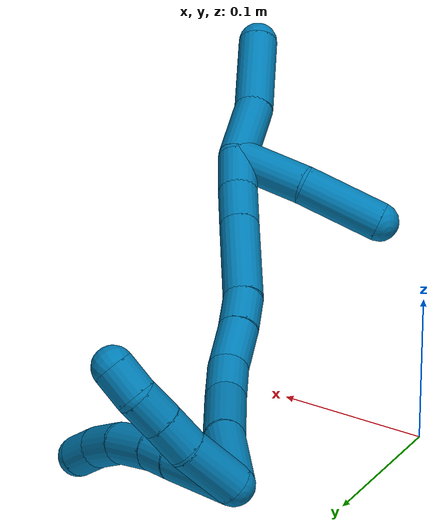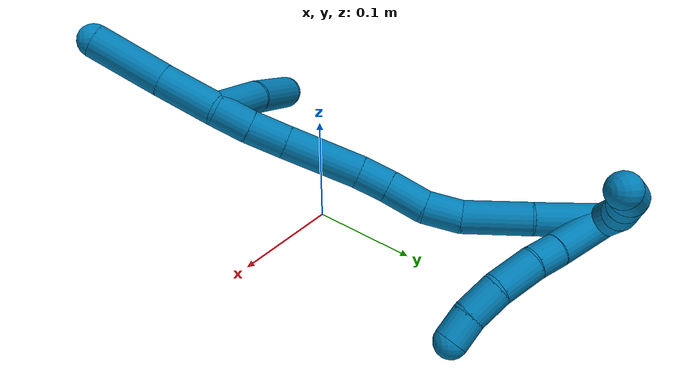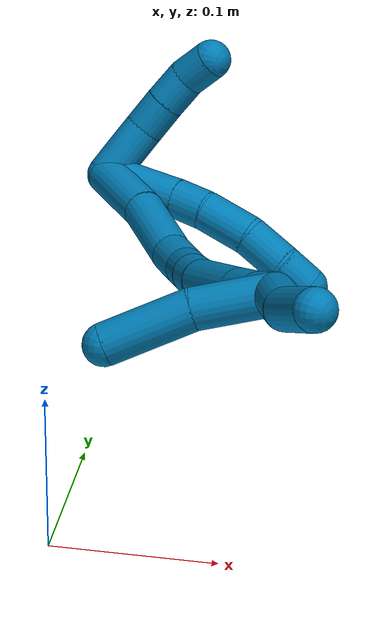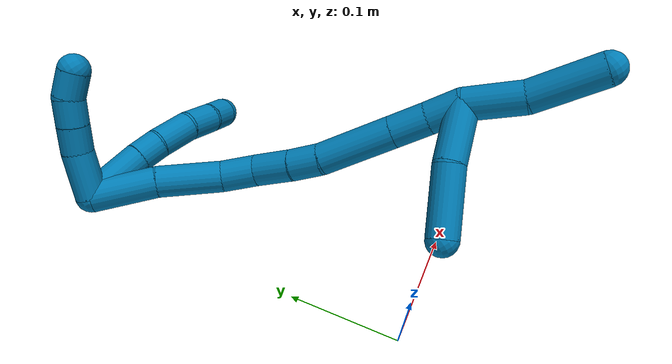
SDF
<sdf version="1.7">
 <world name="default">
  <model name="9">
   <static>0</static>
   <link name="9">
    <collision name="collision-cylinder-e_1_2_8">
     <pose>-0.007497 0.005002 -0.022842 -2.92601 -0.31027 1.93102</pose>
     <geometry><cylinder><radius>0.0125</radius><length>0.049112</length></cylinder></geometry>
     <surface>
      <friction><ode><mu>1.16</mu><mu2>1.16</mu2><slip1>0</slip1><slip2>0</slip2></ode></friction>
      <contact><ode><kp>1e+06</kp><kd>1</kd><max_vel>0</max_vel><min_depth>0.001</min_depth></ode></contact>
     </surface>
    </collision>
    <visual name="visual-cylinder-e_1_2_8">
     <pose>-0.007497 0.005002 -0.022842 -2.92601 -0.31027 1.93102</pose>
     <geometry><cylinder><radius>0.0125</radius><length>0.049112</length></cylinder></geometry>
     <material><ambient>0 0.490196 0.709804 1</ambient></material>
    </visual>
    <collision name="collision-cylinder-e_2_8_9">
     <pose>-0.018314 0.011351 -0.055439 -3.00434 -0.325169 2.34801</pose>
     <geometry><cylinder><radius>0.0125</radius><length>0.020783</length></cylinder></geometry>
     <surface>
      <friction><ode><mu>1.16</mu><mu2>1.16</mu2><slip1>0</slip1><slip2>0</slip2></ode></friction>
      <contact><ode><kp>1e+06</kp><kd>1</kd><max_vel>0</max_vel><min_depth>0.001</min_depth></ode></contact>
     </surface>
    </collision>
    <visual name="visual-cylinder-e_2_8_9">
     <pose>-0.018314 0.011351 -0.055439 -3.00434 -0.325169 2.34801</pose>
     <geometry><cylinder><radius>0.0125</radius><length>0.020783</length></cylinder></geometry>
     <material><ambient>0 0.490196 0.709804 1</ambient></material>
    </visual>
    <collision name="collision-cylinder-e_3_9_10">
     <pose>-0.029017 0.014257 -0.079372 -3.03211 -0.477627 2.69884</pose>
     <geometry><cylinder><radius>0.0125</radius><length>0.032124</length></cylinder></geometry>
     <surface>
      <friction><ode><mu>1.16</mu><mu2>1.16</mu2><slip1>0</slip1><slip2>0</slip2></ode></friction>
      <contact><ode><kp>1e+06</kp><kd>1</kd><max_vel>0</max_vel><min_depth>0.001</min_depth></ode></contact>
     </surface>
    </collision>
    <visual name="visual-cylinder-e_3_9_10">
     <pose>-0.029017 0.014257 -0.079372 -3.03211 -0.477627 2.69884</pose>
     <geometry><cylinder><radius>0.0125</radius><length>0.032124</length></cylinder></geometry>
     <material><ambient>0 0.490196 0.709804 1</ambient></material>
    </visual>
    <collision name="collision-cylinder-e_4_10_11">
     <pose>-0.045011 0.01622 -0.103786 -3.10211 -0.699026 3.03336</pose>
     <geometry><cylinder><radius>0.0125</radius><length>0.026763</length></cylinder></geometry>
     <surface>
      <friction><ode><mu>1.16</mu><mu2>1.16</mu2><slip1>0</slip1><slip2>0</slip2></ode></friction>
      <contact><ode><kp>1e+06</kp><kd>1</kd><max_vel>0</max_vel><min_depth>0.001</min_depth></ode></contact>
     </surface>
    </collision>
    <visual name="visual-cylinder-e_4_10_11">
     <pose>-0.045011 0.01622 -0.103786 -3.10211 -0.699026 3.03336</pose>
     <geometry><cylinder><radius>0.0125</radius><length>0.026763</length></cylinder></geometry>
     <material><ambient>0 0.490196 0.709804 1</ambient></material>
    </visual>
    <collision name="collision-cylinder-e_5_11_6">
     <pose>-0.061665 0.017847 -0.120831 -2.96401 -0.860406 2.75834</pose>
     <geometry><cylinder><radius>0.0125</radius><length>0.021219</length></cylinder></geometry>
     <surface>
      <friction><ode><mu>1.16</mu><mu2>1.16</mu2><slip1>0</slip1><slip2>0</slip2></ode></friction>
      <contact><ode><kp>1e+06</kp><kd>1</kd><max_vel>0</max_vel><min_depth>0.001</min_depth></ode></contact>
     </surface>
    </collision>
    <visual name="visual-cylinder-e_5_11_6">
     <pose>-0.061665 0.017847 -0.120831 -2.96401 -0.860406 2.75834</pose>
     <geometry><cylinder><radius>0.0125</radius><length>0.021219</length></cylinder></geometry>
     <material><ambient>0 0.490196 0.709804 1</ambient></material>
    </visual>
    <collision name="collision-cylinder-e_1_2_12">
     <pose>0.008788 0.014995 -0.006227 -1.96436 0.496093 -0.725228</pose>
     <geometry><cylinder><radius>0.0125</radius><length>0.036925</length></cylinder></geometry>
     <surface>
      <friction><ode><mu>1.16</mu><mu2>1.16</mu2><slip1>0</slip1><slip2>0</slip2></ode></friction>
      <contact><ode><kp>1e+06</kp><kd>1</kd><max_vel>0</max_vel><min_depth>0.001</min_depth></ode></contact>
     </surface>
    </collision>
    <visual name="visual-cylinder-e_1_2_12">
     <pose>0.008788 0.014995 -0.006227 -1.96436 0.496093 -0.725228</pose>
     <geometry><cylinder><radius>0.0125</radius><length>0.036925</length></cylinder></geometry>
     <material><ambient>0 0.490196 0.709804 1</ambient></material>
    </visual>
    <collision name="collision-cylinder-e_2_12_13">
     <pose>0.023451 0.037462 -0.017281 -2.1445 0.583677 -1.00846</pose>
     <geometry><cylinder><radius>0.0125</radius><length>0.021321</length></cylinder></geometry>
     <surface>
      <friction><ode><mu>1.16</mu><mu2>1.16</mu2><slip1>0</slip1><slip2>0</slip2></ode></friction>
      <contact><ode><kp>1e+06</kp><kd>1</kd><max_vel>0</max_vel><min_depth>0.001</min_depth></ode></contact>
     </surface>
    </collision>
    <visual name="visual-cylinder-e_2_12_13">
     <pose>0.023451 0.037462 -0.017281 -2.1445 0.583677 -1.00846</pose>
     <geometry><cylinder><radius>0.0125</radius><length>0.021321</length></cylinder></geometry>
     <material><ambient>0 0.490196 0.709804 1</ambient></material>
    </visual>
    <collision name="collision-cylinder-e_3_13_14">
     <pose>0.034776 0.052401 -0.026977 -2.1485 0.548738 -0.958215</pose>
     <geometry><cylinder><radius>0.0125</radius><length>0.020898</length></cylinder></geometry>
     <surface>
      <friction><ode><mu>1.16</mu><mu2>1.16</mu2><slip1>0</slip1><slip2>0</slip2></ode></friction>
      <contact><ode><kp>1e+06</kp><kd>1</kd><max_vel>0</max_vel><min_depth>0.001</min_depth></ode></contact>
     </surface>
    </collision>
    <visual name="visual-cylinder-e_3_13_14">
     <pose>0.034776 0.052401 -0.026977 -2.1485 0.548738 -0.958215</pose>
     <geometry><cylinder><radius>0.0125</radius><length>0.020898</length></cylinder></geometry>
     <material><ambient>0 0.490196 0.709804 1</ambient></material>
    </visual>
    <collision name="collision-cylinder-e_4_14_5">
     <pose>0.045036 0.065184 -0.039421 -2.52983 0.479375 -1.31723</pose>
     <geometry><cylinder><radius>0.0125</radius><length>0.020857</length></cylinder></geometry>
     <surface>
      <friction><ode><mu>1.16</mu><mu2>1.16</mu2><slip1>0</slip1><slip2>0</slip2></ode></friction>
      <contact><ode><kp>1e+06</kp><kd>1</kd><max_vel>0</max_vel><min_depth>0.001</min_depth></ode></contact>
     </surface>
    </collision>
    <visual name="visual-cylinder-e_4_14_5">
     <pose>0.045036 0.065184 -0.039421 -2.52983 0.479375 -1.31723</pose>
     <geometry><cylinder><radius>0.0125</radius><length>0.020857</length></cylinder></geometry>
     <material><ambient>0 0.490196 0.709804 1</ambient></material>
    </visual>
    <collision name="collision-cylinder-e_1_2_15">
     <pose>-0.001061 -0.009669 -0.023704 2.75429 -0.041419 -0.21045</pose>
     <geometry><cylinder><radius>0.0125</radius><length>0.051245</length></cylinder></geometry>
     <surface>
      <friction><ode><mu>1.16</mu><mu2>1.16</mu2><slip1>0</slip1><slip2>0</slip2></ode></friction>
      <contact><ode><kp>1e+06</kp><kd>1</kd><max_vel>0</max_vel><min_depth>0.001</min_depth></ode></contact>
     </surface>
    </collision>
    <visual name="visual-cylinder-e_1_2_15">
     <pose>-0.001061 -0.009669 -0.023704 2.75429 -0.041419 -0.21045</pose>
     <geometry><cylinder><radius>0.0125</radius><length>0.051245</length></cylinder></geometry>
     <material><ambient>0 0.490196 0.709804 1</ambient></material>
    </visual>
    <collision name="collision-cylinder-e_2_15_16">
     <pose>-0.004108 -0.032196 -0.069731 2.61901 -0.076956 -0.285968</pose>
     <geometry><cylinder><radius>0.0125</radius><length>0.051675</length></cylinder></geometry>
     <surface>
      <friction><ode><mu>1.16</mu><mu2>1.16</mu2><slip1>0</slip1><slip2>0</slip2></ode></friction>
      <contact><ode><kp>1e+06</kp><kd>1</kd><max_vel>0</max_vel><min_depth>0.001</min_depth></ode></contact>
     </surface>
    </collision>
    <visual name="visual-cylinder-e_2_15_16">
     <pose>-0.004108 -0.032196 -0.069731 2.61901 -0.076956 -0.285968</pose>
     <geometry><cylinder><radius>0.0125</radius><length>0.051675</length></cylinder></geometry>
     <material><ambient>0 0.490196 0.709804 1</ambient></material>
    </visual>
    <collision name="collision-cylinder-e_3_16_17">
     <pose>-0.00351 -0.051577 -0.104374 2.65464 0.183291 0.708717</pose>
     <geometry><cylinder><radius>0.0125</radius><length>0.028356</length></cylinder></geometry>
     <surface>
      <friction><ode><mu>1.16</mu><mu2>1.16</mu2><slip1>0</slip1><slip2>0</slip2></ode></friction>
      <contact><ode><kp>1e+06</kp><kd>1</kd><max_vel>0</max_vel><min_depth>0.001</min_depth></ode></contact>
     </surface>
    </collision>
    <visual name="visual-cylinder-e_3_16_17">
     <pose>-0.00351 -0.051577 -0.104374 2.65464 0.183291 0.708717</pose>
     <geometry><cylinder><radius>0.0125</radius><length>0.028356</length></cylinder></geometry>
     <material><ambient>0 0.490196 0.709804 1</ambient></material>
    </visual>
    <collision name="collision-cylinder-e_4_17_18">
     <pose>0.00537 -0.065818 -0.128354 2.55688 0.423101 1.23952</pose>
     <geometry><cylinder><radius>0.0125</radius><length>0.030669</length></cylinder></geometry>
     <surface>
      <friction><ode><mu>1.16</mu><mu2>1.16</mu2><slip1>0</slip1><slip2>0</slip2></ode></friction>
      <contact><ode><kp>1e+06</kp><kd>1</kd><max_vel>0</max_vel><min_depth>0.001</min_depth></ode></contact>
     </surface>
    </collision>
    <visual name="visual-cylinder-e_4_17_18">
     <pose>0.00537 -0.065818 -0.128354 2.55688 0.423101 1.23952</pose>
     <geometry><cylinder><radius>0.0125</radius><length>0.030669</length></cylinder></geometry>
     <material><ambient>0 0.490196 0.709804 1</ambient></material>
    </visual>
    <collision name="collision-cylinder-e_5_18_19">
     <pose>0.016227 -0.079035 -0.149877 2.63298 0.383856 1.28389</pose>
     <geometry><cylinder><radius>0.0125</radius><length>0.024358</length></cylinder></geometry>
     <surface>
      <friction><ode><mu>1.16</mu><mu2>1.16</mu2><slip1>0</slip1><slip2>0</slip2></ode></friction>
      <contact><ode><kp>1e+06</kp><kd>1</kd><max_vel>0</max_vel><min_depth>0.001</min_depth></ode></contact>
     </surface>
    </collision>
    <visual name="visual-cylinder-e_5_18_19">
     <pose>0.016227 -0.079035 -0.149877 2.63298 0.383856 1.28389</pose>
     <geometry><cylinder><radius>0.0125</radius><length>0.024358</length></cylinder></geometry>
     <material><ambient>0 0.490196 0.709804 1</ambient></material>
    </visual>
    <collision name="collision-cylinder-e_6_19_20">
     <pose>0.031024 -0.093509 -0.185592 2.80746 0.357941 1.64095</pose>
     <geometry><cylinder><radius>0.0125</radius><length>0.058435</length></cylinder></geometry>
     <surface>
      <friction><ode><mu>1.16</mu><mu2>1.16</mu2><slip1>0</slip1><slip2>0</slip2></ode></friction>
      <contact><ode><kp>1e+06</kp><kd>1</kd><max_vel>0</max_vel><min_depth>0.001</min_depth></ode></contact>
     </surface>
    </collision>
    <visual name="visual-cylinder-e_6_19_20">
     <pose>0.031024 -0.093509 -0.185592 2.80746 0.357941 1.64095</pose>
     <geometry><cylinder><radius>0.0125</radius><length>0.058435</length></cylinder></geometry>
     <material><ambient>0 0.490196 0.709804 1</ambient></material>
    </visual>
    <collision name="collision-cylinder-e_7_20_21">
     <pose>0.0464 -0.10685 -0.223931 2.80519 0.370584 1.66946</pose>
     <geometry><cylinder><radius>0.0125</radius><length>0.028383</length></cylinder></geometry>
     <surface>
      <friction><ode><mu>1.16</mu><mu2>1.16</mu2><slip1>0</slip1><slip2>0</slip2></ode></friction>
      <contact><ode><kp>1e+06</kp><kd>1</kd><max_vel>0</max_vel><min_depth>0.001</min_depth></ode></contact>
     </surface>
    </collision>
    <visual name="visual-cylinder-e_7_20_21">
     <pose>0.0464 -0.10685 -0.223931 2.80519 0.370584 1.66946</pose>
     <geometry><cylinder><radius>0.0125</radius><length>0.028383</length></cylinder></geometry>
     <material><ambient>0 0.490196 0.709804 1</ambient></material>
    </visual>
    <collision name="collision-cylinder-e_8_21_1">
     <pose>0.057417 -0.115237 -0.247816 2.80252 0.452633 1.86305</pose>
     <geometry><cylinder><radius>0.0125</radius><length>0.026879</length></cylinder></geometry>
     <surface>
      <friction><ode><mu>1.16</mu><mu2>1.16</mu2><slip1>0</slip1><slip2>0</slip2></ode></friction>
      <contact><ode><kp>1e+06</kp><kd>1</kd><max_vel>0</max_vel><min_depth>0.001</min_depth></ode></contact>
     </surface>
    </collision>
    <visual name="visual-cylinder-e_8_21_1">
     <pose>0.057417 -0.115237 -0.247816 2.80252 0.452633 1.86305</pose>
     <geometry><cylinder><radius>0.0125</radius><length>0.026879</length></cylinder></geometry>
     <material><ambient>0 0.490196 0.709804 1</ambient></material>
    </visual>
    <collision name="collision-cylinder-e_1_1_22">
     <pose>0.064131 -0.13399 -0.241212 0.685875 0.035936 0.012832</pose>
     <geometry><cylinder><radius>0.0125</radius><length>0.046554</length></cylinder></geometry>
     <surface>
      <friction><ode><mu>1.16</mu><mu2>1.16</mu2><slip1>0</slip1><slip2>0</slip2></ode></friction>
      <contact><ode><kp>1e+06</kp><kd>1</kd><max_vel>0</max_vel><min_depth>0.001</min_depth></ode></contact>
     </surface>
    </collision>
    <visual name="visual-cylinder-e_1_1_22">
     <pose>0.064131 -0.13399 -0.241212 0.685875 0.035936 0.012832</pose>
     <geometry><cylinder><radius>0.0125</radius><length>0.046554</length></cylinder></geometry>
     <material><ambient>0 0.490196 0.709804 1</ambient></material>
    </visual>
    <collision name="collision-cylinder-e_2_22_4">
     <pose>0.062316 -0.168417 -0.205343 0.834003 -0.099375 -0.04405</pose>
     <geometry><cylinder><radius>0.0125</radius><length>0.053446</length></cylinder></geometry>
     <surface>
      <friction><ode><mu>1.16</mu><mu2>1.16</mu2><slip1>0</slip1><slip2>0</slip2></ode></friction>
      <contact><ode><kp>1e+06</kp><kd>1</kd><max_vel>0</max_vel><min_depth>0.001</min_depth></ode></contact>
     </surface>
    </collision>
    <visual name="visual-cylinder-e_2_22_4">
     <pose>0.062316 -0.168417 -0.205343 0.834003 -0.099375 -0.04405</pose>
     <geometry><cylinder><radius>0.0125</radius><length>0.053446</length></cylinder></geometry>
     <material><ambient>0 0.490196 0.709804 1</ambient></material>
    </visual>
    <collision name="collision-cylinder-e_1_1_23">
     <pose>0.071739 -0.131508 -0.275985 2.51069 0.386151 1.07949</pose>
     <geometry><cylinder><radius>0.0125</radius><length>0.044843</length></cylinder></geometry>
     <surface>
      <friction><ode><mu>1.16</mu><mu2>1.16</mu2><slip1>0</slip1><slip2>0</slip2></ode></friction>
      <contact><ode><kp>1e+06</kp><kd>1</kd><max_vel>0</max_vel><min_depth>0.001</min_depth></ode></contact>
     </surface>
    </collision>
    <visual name="visual-cylinder-e_1_1_23">
     <pose>0.071739 -0.131508 -0.275985 2.51069 0.386151 1.07949</pose>
     <geometry><cylinder><radius>0.0125</radius><length>0.044843</length></cylinder></geometry>
     <material><ambient>0 0.490196 0.709804 1</ambient></material>
    </visual>
    <collision name="collision-cylinder-e_2_23_3">
     <pose>0.093128 -0.153142 -0.31523 2.74611 0.488578 1.7875</pose>
     <geometry><cylinder><radius>0.0125</radius><length>0.055157</length></cylinder></geometry>
     <surface>
      <friction><ode><mu>1.16</mu><mu2>1.16</mu2><slip1>0</slip1><slip2>0</slip2></ode></friction>
      <contact><ode><kp>1e+06</kp><kd>1</kd><max_vel>0</max_vel><min_depth>0.001</min_depth></ode></contact>
     </surface>
    </collision>
    <visual name="visual-cylinder-e_2_23_3">
     <pose>0.093128 -0.153142 -0.31523 2.74611 0.488578 1.7875</pose>
     <geometry><cylinder><radius>0.0125</radius><length>0.055157</length></cylinder></geometry>
     <material><ambient>0 0.490196 0.709804 1</ambient></material>
    </visual>
    <collision name="collision-sphere-3">
     <pose>0.106073 -0.162524 -0.337702 0 -0 0</pose>
     <geometry><sphere><radius>0.0125</radius></sphere></geometry>
     <surface>
      <friction><ode><mu>1.16</mu><mu2>1.16</mu2><slip1>0</slip1><slip2>0</slip2></ode></friction>
      <contact><ode><kp>1e+06</kp><kd>1</kd><max_vel>0</max_vel><min_depth>0.001</min_depth></ode></contact>
     </surface>
    </collision>
    <visual name="visual-sphere-3">
     <pose>0.106073 -0.162524 -0.337702 0 -0 0</pose>
     <geometry><sphere><radius>0.0125</radius></sphere></geometry>
     <material><ambient>0 0.490196 0.709804 1</ambient></material>
    </visual>
    <collision name="collision-sphere-23">
     <pose>0.080184 -0.14376 -0.292757 0 -0 0</pose>
     <geometry><sphere><radius>0.0125</radius></sphere></geometry>
     <surface>
      <friction><ode><mu>1.16</mu><mu2>1.16</mu2><slip1>0</slip1><slip2>0</slip2></ode></friction>
      <contact><ode><kp>1e+06</kp><kd>1</kd><max_vel>0</max_vel><min_depth>0.001</min_depth></ode></contact>
     </surface>
    </collision>
    <visual name="visual-sphere-23">
     <pose>0.080184 -0.14376 -0.292757 0 -0 0</pose>
     <geometry><sphere><radius>0.0125</radius></sphere></geometry>
     <material><ambient>0 0.490196 0.709804 1</ambient></material>
    </visual>
    <collision name="collision-sphere-4">
     <pose>0.059665 -0.188111 -0.187476 0 -0 0</pose>
     <geometry><sphere><radius>0.0125</radius></sphere></geometry>
     <surface>
      <friction><ode><mu>1.16</mu><mu2>1.16</mu2><slip1>0</slip1><slip2>0</slip2></ode></friction>
      <contact><ode><kp>1e+06</kp><kd>1</kd><max_vel>0</max_vel><min_depth>0.001</min_depth></ode></contact>
     </surface>
    </collision>
    <visual name="visual-sphere-4">
     <pose>0.059665 -0.188111 -0.187476 0 -0 0</pose>
     <geometry><sphere><radius>0.0125</radius></sphere></geometry>
     <material><ambient>0 0.490196 0.709804 1</ambient></material>
    </visual>
    <collision name="collision-sphere-22">
     <pose>0.064967 -0.148722 -0.22321 0 -0 0</pose>
     <geometry><sphere><radius>0.0125</radius></sphere></geometry>
     <surface>
      <friction><ode><mu>1.16</mu><mu2>1.16</mu2><slip1>0</slip1><slip2>0</slip2></ode></friction>
      <contact><ode><kp>1e+06</kp><kd>1</kd><max_vel>0</max_vel><min_depth>0.001</min_depth></ode></contact>
     </surface>
    </collision>
    <visual name="visual-sphere-22">
     <pose>0.064967 -0.148722 -0.22321 0 -0 0</pose>
     <geometry><sphere><radius>0.0125</radius></sphere></geometry>
     <material><ambient>0 0.490196 0.709804 1</ambient></material>
    </visual>
    <collision name="collision-sphere-1">
     <pose>0.063295 -0.119257 -0.259214 0 -0 0</pose>
     <geometry><sphere><radius>0.0125</radius></sphere></geometry>
     <surface>
      <friction><ode><mu>1.16</mu><mu2>1.16</mu2><slip1>0</slip1><slip2>0</slip2></ode></friction>
      <contact><ode><kp>1e+06</kp><kd>1</kd><max_vel>0</max_vel><min_depth>0.001</min_depth></ode></contact>
     </surface>
    </collision>
    <visual name="visual-sphere-1">
     <pose>0.063295 -0.119257 -0.259214 0 -0 0</pose>
     <geometry><sphere><radius>0.0125</radius></sphere></geometry>
     <material><ambient>0 0.490196 0.709804 1</ambient></material>
    </visual>
    <collision name="collision-sphere-21">
     <pose>0.05154 -0.111217 -0.236418 0 -0 0</pose>
     <geometry><sphere><radius>0.0125</radius></sphere></geometry>
     <surface>
      <friction><ode><mu>1.16</mu><mu2>1.16</mu2><slip1>0</slip1><slip2>0</slip2></ode></friction>
      <contact><ode><kp>1e+06</kp><kd>1</kd><max_vel>0</max_vel><min_depth>0.001</min_depth></ode></contact>
     </surface>
    </collision>
    <visual name="visual-sphere-21">
     <pose>0.05154 -0.111217 -0.236418 0 -0 0</pose>
     <geometry><sphere><radius>0.0125</radius></sphere></geometry>
     <material><ambient>0 0.490196 0.709804 1</ambient></material>
    </visual>
    <collision name="collision-sphere-6">
     <pose>-0.069708 0.019069 -0.127641 0 -0 0</pose>
     <geometry><sphere><radius>0.0125</radius></sphere></geometry>
     <surface>
      <friction><ode><mu>1.16</mu><mu2>1.16</mu2><slip1>0</slip1><slip2>0</slip2></ode></friction>
      <contact><ode><kp>1e+06</kp><kd>1</kd><max_vel>0</max_vel><min_depth>0.001</min_depth></ode></contact>
     </surface>
    </collision>
    <visual name="visual-sphere-6">
     <pose>-0.069708 0.019069 -0.127641 0 -0 0</pose>
     <geometry><sphere><radius>0.0125</radius></sphere></geometry>
     <material><ambient>0 0.490196 0.709804 1</ambient></material>
    </visual>
    <collision name="collision-sphere-11">
     <pose>-0.053622 0.016624 -0.114021 0 -0 0</pose>
     <geometry><sphere><radius>0.0125</radius></sphere></geometry>
     <surface>
      <friction><ode><mu>1.16</mu><mu2>1.16</mu2><slip1>0</slip1><slip2>0</slip2></ode></friction>
      <contact><ode><kp>1e+06</kp><kd>1</kd><max_vel>0</max_vel><min_depth>0.001</min_depth></ode></contact>
     </surface>
    </collision>
    <visual name="visual-sphere-11">
     <pose>-0.053622 0.016624 -0.114021 0 -0 0</pose>
     <geometry><sphere><radius>0.0125</radius></sphere></geometry>
     <material><ambient>0 0.490196 0.709804 1</ambient></material>
    </visual>
    <collision name="collision-sphere-10">
     <pose>-0.036401 0.015816 -0.093551 0 -0 0</pose>
     <geometry><sphere><radius>0.0125</radius></sphere></geometry>
     <surface>
      <friction><ode><mu>1.16</mu><mu2>1.16</mu2><slip1>0</slip1><slip2>0</slip2></ode></friction>
      <contact><ode><kp>1e+06</kp><kd>1</kd><max_vel>0</max_vel><min_depth>0.001</min_depth></ode></contact>
     </surface>
    </collision>
    <visual name="visual-sphere-10">
     <pose>-0.036401 0.015816 -0.093551 0 -0 0</pose>
     <geometry><sphere><radius>0.0125</radius></sphere></geometry>
     <material><ambient>0 0.490196 0.709804 1</ambient></material>
    </visual>
    <collision name="collision-sphere-9">
     <pose>-0.021634 0.012699 -0.065193 0 -0 0</pose>
     <geometry><sphere><radius>0.0125</radius></sphere></geometry>
     <surface>
      <friction><ode><mu>1.16</mu><mu2>1.16</mu2><slip1>0</slip1><slip2>0</slip2></ode></friction>
      <contact><ode><kp>1e+06</kp><kd>1</kd><max_vel>0</max_vel><min_depth>0.001</min_depth></ode></contact>
     </surface>
    </collision>
    <visual name="visual-sphere-9">
     <pose>-0.021634 0.012699 -0.065193 0 -0 0</pose>
     <geometry><sphere><radius>0.0125</radius></sphere></geometry>
     <material><ambient>0 0.490196 0.709804 1</ambient></material>
    </visual>
    <collision name="collision-sphere-2">
     <geometry><sphere><radius>0.0125</radius></sphere></geometry>
     <surface>
      <friction><ode><mu>1.16</mu><mu2>1.16</mu2><slip1>0</slip1><slip2>0</slip2></ode></friction>
      <contact><ode><kp>1e+06</kp><kd>1</kd><max_vel>0</max_vel><min_depth>0.001</min_depth></ode></contact>
     </surface>
    </collision>
    <visual name="visual-sphere-2">
     <geometry><sphere><radius>0.0125</radius></sphere></geometry>
     <material><ambient>0 0.490196 0.709804 1</ambient></material>
    </visual>
    <collision name="collision-sphere-19">
     <pose>0.020788 -0.084534 -0.15974 0 -0 0</pose>
     <geometry><sphere><radius>0.0125</radius></sphere></geometry>
     <surface>
      <friction><ode><mu>1.16</mu><mu2>1.16</mu2><slip1>0</slip1><slip2>0</slip2></ode></friction>
      <contact><ode><kp>1e+06</kp><kd>1</kd><max_vel>0</max_vel><min_depth>0.001</min_depth></ode></contact>
     </surface>
    </collision>
    <visual name="visual-sphere-19">
     <pose>0.020788 -0.084534 -0.15974 0 -0 0</pose>
     <geometry><sphere><radius>0.0125</radius></sphere></geometry>
     <material><ambient>0 0.490196 0.709804 1</ambient></material>
    </visual>
    <collision name="collision-sphere-8">
     <pose>-0.014995 0.010004 -0.045684 0 -0 0</pose>
     <geometry><sphere><radius>0.0125</radius></sphere></geometry>
     <surface>
      <friction><ode><mu>1.16</mu><mu2>1.16</mu2><slip1>0</slip1><slip2>0</slip2></ode></friction>
      <contact><ode><kp>1e+06</kp><kd>1</kd><max_vel>0</max_vel><min_depth>0.001</min_depth></ode></contact>
     </surface>
    </collision>
    <visual name="visual-sphere-8">
     <pose>-0.014995 0.010004 -0.045684 0 -0 0</pose>
     <geometry><sphere><radius>0.0125</radius></sphere></geometry>
     <material><ambient>0 0.490196 0.709804 1</ambient></material>
    </visual>
    <collision name="collision-sphere-12">
     <pose>0.017576 0.029991 -0.012453 0 -0 0</pose>
     <geometry><sphere><radius>0.0125</radius></sphere></geometry>
     <surface>
      <friction><ode><mu>1.16</mu><mu2>1.16</mu2><slip1>0</slip1><slip2>0</slip2></ode></friction>
      <contact><ode><kp>1e+06</kp><kd>1</kd><max_vel>0</max_vel><min_depth>0.001</min_depth></ode></contact>
     </surface>
    </collision>
    <visual name="visual-sphere-12">
     <pose>0.017576 0.029991 -0.012453 0 -0 0</pose>
     <geometry><sphere><radius>0.0125</radius></sphere></geometry>
     <material><ambient>0 0.490196 0.709804 1</ambient></material>
    </visual>
    <collision name="collision-sphere-13">
     <pose>0.029326 0.044933 -0.022109 0 -0 0</pose>
     <geometry><sphere><radius>0.0125</radius></sphere></geometry>
     <surface>
      <friction><ode><mu>1.16</mu><mu2>1.16</mu2><slip1>0</slip1><slip2>0</slip2></ode></friction>
      <contact><ode><kp>1e+06</kp><kd>1</kd><max_vel>0</max_vel><min_depth>0.001</min_depth></ode></contact>
     </surface>
    </collision>
    <visual name="visual-sphere-13">
     <pose>0.029326 0.044933 -0.022109 0 -0 0</pose>
     <geometry><sphere><radius>0.0125</radius></sphere></geometry>
     <material><ambient>0 0.490196 0.709804 1</ambient></material>
    </visual>
    <collision name="collision-sphere-14">
     <pose>0.040226 0.059869 -0.031846 0 -0 0</pose>
     <geometry><sphere><radius>0.0125</radius></sphere></geometry>
     <surface>
      <friction><ode><mu>1.16</mu><mu2>1.16</mu2><slip1>0</slip1><slip2>0</slip2></ode></friction>
      <contact><ode><kp>1e+06</kp><kd>1</kd><max_vel>0</max_vel><min_depth>0.001</min_depth></ode></contact>
     </surface>
    </collision>
    <visual name="visual-sphere-14">
     <pose>0.040226 0.059869 -0.031846 0 -0 0</pose>
     <geometry><sphere><radius>0.0125</radius></sphere></geometry>
     <material><ambient>0 0.490196 0.709804 1</ambient></material>
    </visual>
    <collision name="collision-sphere-5">
     <pose>0.049846 0.070498 -0.046995 0 -0 0</pose>
     <geometry><sphere><radius>0.0125</radius></sphere></geometry>
     <surface>
      <friction><ode><mu>1.16</mu><mu2>1.16</mu2><slip1>0</slip1><slip2>0</slip2></ode></friction>
      <contact><ode><kp>1e+06</kp><kd>1</kd><max_vel>0</max_vel><min_depth>0.001</min_depth></ode></contact>
     </surface>
    </collision>
    <visual name="visual-sphere-5">
     <pose>0.049846 0.070498 -0.046995 0 -0 0</pose>
     <geometry><sphere><radius>0.0125</radius></sphere></geometry>
     <material><ambient>0 0.490196 0.709804 1</ambient></material>
    </visual>
    <collision name="collision-sphere-15">
     <pose>-0.002122 -0.019338 -0.047408 0 -0 0</pose>
     <geometry><sphere><radius>0.0125</radius></sphere></geometry>
     <surface>
      <friction><ode><mu>1.16</mu><mu2>1.16</mu2><slip1>0</slip1><slip2>0</slip2></ode></friction>
      <contact><ode><kp>1e+06</kp><kd>1</kd><max_vel>0</max_vel><min_depth>0.001</min_depth></ode></contact>
     </surface>
    </collision>
    <visual name="visual-sphere-15">
     <pose>-0.002122 -0.019338 -0.047408 0 -0 0</pose>
     <geometry><sphere><radius>0.0125</radius></sphere></geometry>
     <material><ambient>0 0.490196 0.709804 1</ambient></material>
    </visual>
    <collision name="collision-sphere-16">
     <pose>-0.006095 -0.045054 -0.092054 0 -0 0</pose>
     <geometry><sphere><radius>0.0125</radius></sphere></geometry>
     <surface>
      <friction><ode><mu>1.16</mu><mu2>1.16</mu2><slip1>0</slip1><slip2>0</slip2></ode></friction>
      <contact><ode><kp>1e+06</kp><kd>1</kd><max_vel>0</max_vel><min_depth>0.001</min_depth></ode></contact>
     </surface>
    </collision>
    <visual name="visual-sphere-16">
     <pose>-0.006095 -0.045054 -0.092054 0 -0 0</pose>
     <geometry><sphere><radius>0.0125</radius></sphere></geometry>
     <material><ambient>0 0.490196 0.709804 1</ambient></material>
    </visual>
    <collision name="collision-sphere-17">
     <pose>-0.000926 -0.058101 -0.116695 0 -0 0</pose>
     <geometry><sphere><radius>0.0125</radius></sphere></geometry>
     <surface>
      <friction><ode><mu>1.16</mu><mu2>1.16</mu2><slip1>0</slip1><slip2>0</slip2></ode></friction>
      <contact><ode><kp>1e+06</kp><kd>1</kd><max_vel>0</max_vel><min_depth>0.001</min_depth></ode></contact>
     </surface>
    </collision>
    <visual name="visual-sphere-17">
     <pose>-0.000926 -0.058101 -0.116695 0 -0 0</pose>
     <geometry><sphere><radius>0.0125</radius></sphere></geometry>
     <material><ambient>0 0.490196 0.709804 1</ambient></material>
    </visual>
    <collision name="collision-sphere-18">
     <pose>0.011666 -0.073536 -0.140014 0 -0 0</pose>
     <geometry><sphere><radius>0.0125</radius></sphere></geometry>
     <surface>
      <friction><ode><mu>1.16</mu><mu2>1.16</mu2><slip1>0</slip1><slip2>0</slip2></ode></friction>
      <contact><ode><kp>1e+06</kp><kd>1</kd><max_vel>0</max_vel><min_depth>0.001</min_depth></ode></contact>
     </surface>
    </collision>
    <visual name="visual-sphere-18">
     <pose>0.011666 -0.073536 -0.140014 0 -0 0</pose>
     <geometry><sphere><radius>0.0125</radius></sphere></geometry>
     <material><ambient>0 0.490196 0.709804 1</ambient></material>
    </visual>
    <collision name="collision-sphere-20">
     <pose>0.041261 -0.102484 -0.211445 0 -0 0</pose>
     <geometry><sphere><radius>0.0125</radius></sphere></geometry>
     <surface>
      <friction><ode><mu>1.16</mu><mu2>1.16</mu2><slip1>0</slip1><slip2>0</slip2></ode></friction>
      <contact><ode><kp>1e+06</kp><kd>1</kd><max_vel>0</max_vel><min_depth>0.001</min_depth></ode></contact>
     </surface>
    </collision>
    <visual name="visual-sphere-20">
     <pose>0.041261 -0.102484 -0.211445 0 -0 0</pose>
     <geometry><sphere><radius>0.0125</radius></sphere></geometry>
     <material><ambient>0 0.490196 0.709804 1</ambient></material>
    </visual>
    <inertial>
     <pose>0.023778 -0.057578 -0.137792 0 -0 0</pose>
     <mass>0.75</mass>
     <inertia><ixx>0.000105</ixx><ixy>0</ixy><ixz>0</ixz><iyy>5.6e-05</iyy><iyz>0</iyz><izz>-1e-05</izz></inertia>
    </inertial>
   </link>
   <pose>-0.017842 0.258817 0.103977 2.12172 -1.28443 -2.65352</pose>
  </model>
 </world>
</sdf>
